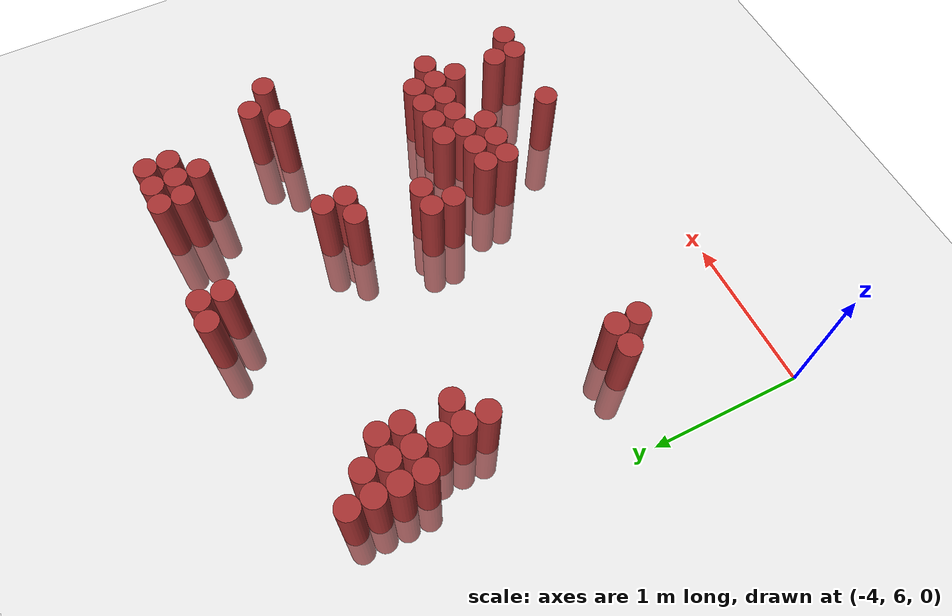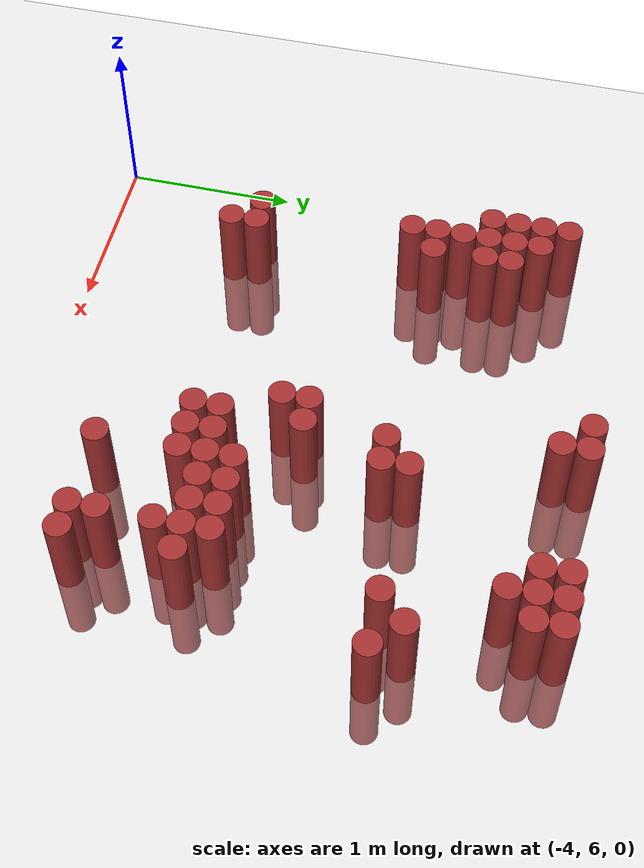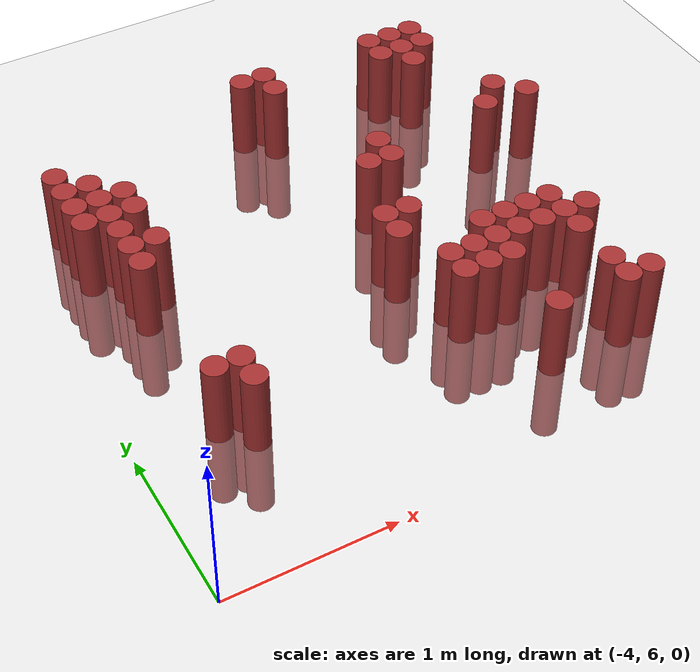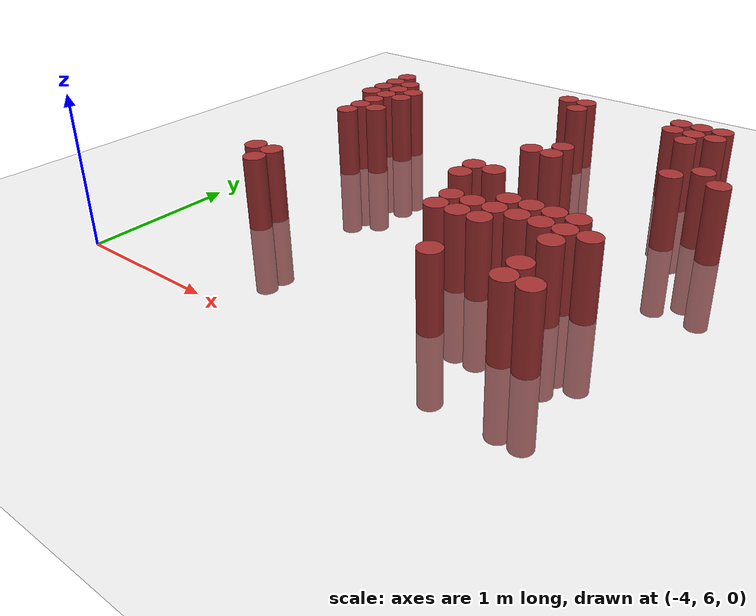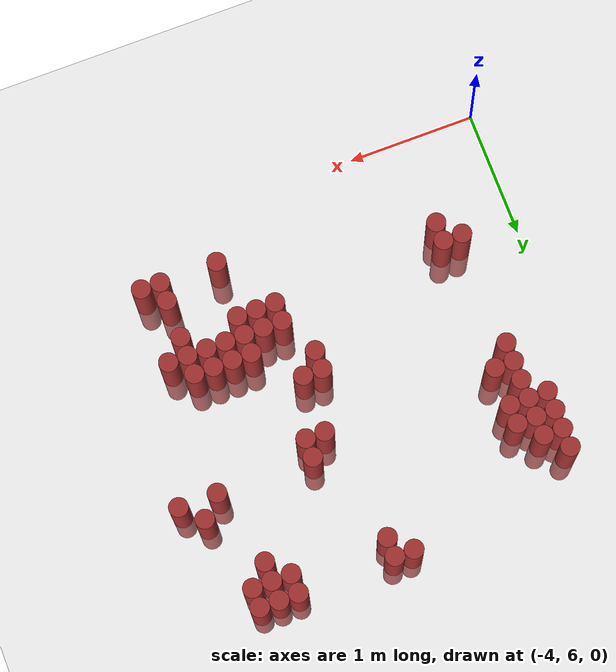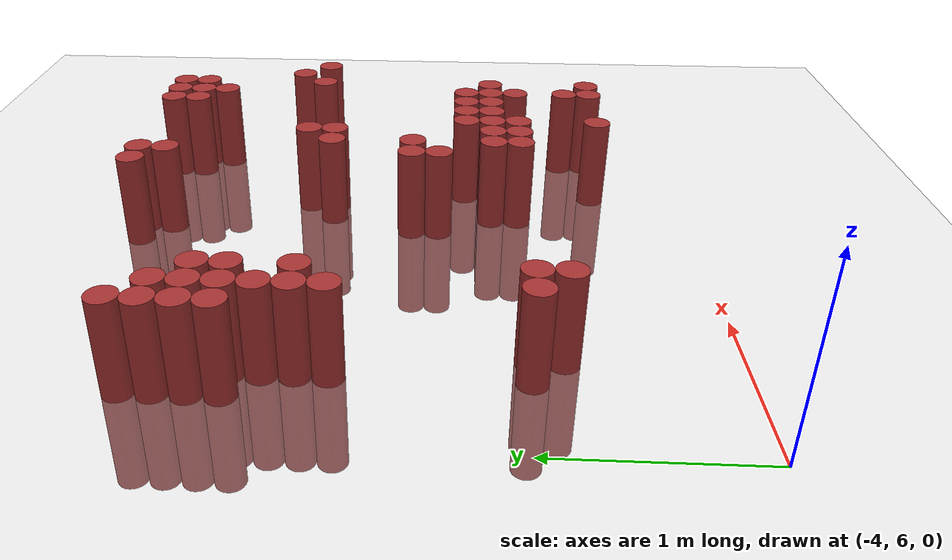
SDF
<sdf version="1.6">
 <world name="default">
  <model name="ground_plane">
   <static>1</static>
   <link name="link">
    <collision name="collision">
     <geometry><plane><normal>0 0 1</normal><size>100 100</size></plane></geometry>
     <surface><friction><ode><mu>100</mu><mu2>50</mu2></ode></friction></surface>
    </collision>
    <visual name="visual">
     <cast_shadows>0</cast_shadows>
     <geometry><plane><normal>0 0 1</normal><size>100 100</size></plane></geometry>
     <material>
      <script><uri>file://media/materials/scripts/gazebo.material</uri><name>Gazebo/Grey</name></script>
     </material>
    </visual>
   </link>
  </model>
  <model name="unit_cylinder_167">
   <static>1</static>
   <pose>-3.675000 8.325000 0.000000 0.000000 0.000000 0.000000</pose>
   <link name="link">
    <inertial>
     <mass>1</mass>
     <inertia><ixx>0.145833</ixx><ixy>0</ixy><ixz>0</ixz><iyy>0.145833</iyy><iyz>0</iyz><izz>0.125</izz></inertia>
    </inertial>
    <collision name="collision">
     <geometry><cylinder><radius>0.075000</radius><length>1</length></cylinder></geometry>
    </collision>
    <visual name="visual">
     <geometry><cylinder><radius>0.075000</radius><length>1</length></cylinder></geometry>
     <material>
      <ambient>0.648000 0.192000 0.192000 1</ambient>
      <diffuse>0.648000 0.192000 0.192000 1</diffuse>
     </material>
     <material>
      <script><name>Gazebo/Grey</name><uri>file://media/materials/scripts/gazebo.material</uri></script>
     </material>
    </visual>
   </link>
  </model>
  <model name="unit_cylinder_168">
   <static>1</static>
   <pose>-3.675000 8.475000 0.000000 0.000000 0.000000 0.000000</pose>
   <link name="link">
    <inertial>
     <mass>1</mass>
     <inertia><ixx>0.145833</ixx><ixy>0</ixy><ixz>0</ixz><iyy>0.145833</iyy><iyz>0</iyz><izz>0.125</izz></inertia>
    </inertial>
    <collision name="collision">
     <geometry><cylinder><radius>0.075000</radius><length>1</length></cylinder></geometry>
    </collision>
    <visual name="visual">
     <geometry><cylinder><radius>0.075000</radius><length>1</length></cylinder></geometry>
     <material>
      <ambient>0.648000 0.192000 0.192000 1</ambient>
      <diffuse>0.648000 0.192000 0.192000 1</diffuse>
     </material>
     <material>
      <script><name>Gazebo/Grey</name><uri>file://media/materials/scripts/gazebo.material</uri></script>
     </material>
    </visual>
   </link>
  </model>
  <model name="unit_cylinder_169">
   <static>1</static>
   <pose>-3.675000 8.625000 0.000000 0.000000 0.000000 0.000000</pose>
   <link name="link">
    <inertial>
     <mass>1</mass>
     <inertia><ixx>0.145833</ixx><ixy>0</ixy><ixz>0</ixz><iyy>0.145833</iyy><iyz>0</iyz><izz>0.125</izz></inertia>
    </inertial>
    <collision name="collision">
     <geometry><cylinder><radius>0.075000</radius><length>1</length></cylinder></geometry>
    </collision>
    <visual name="visual">
     <geometry><cylinder><radius>0.075000</radius><length>1</length></cylinder></geometry>
     <material>
      <ambient>0.648000 0.192000 0.192000 1</ambient>
      <diffuse>0.648000 0.192000 0.192000 1</diffuse>
     </material>
     <material>
      <script><name>Gazebo/Grey</name><uri>file://media/materials/scripts/gazebo.material</uri></script>
     </material>
    </visual>
   </link>
  </model>
  <model name="unit_cylinder_170">
   <static>1</static>
   <pose>-3.675000 8.775000 0.000000 0.000000 0.000000 0.000000</pose>
   <link name="link">
    <inertial>
     <mass>1</mass>
     <inertia><ixx>0.145833</ixx><ixy>0</ixy><ixz>0</ixz><iyy>0.145833</iyy><iyz>0</iyz><izz>0.125</izz></inertia>
    </inertial>
    <collision name="collision">
     <geometry><cylinder><radius>0.075000</radius><length>1</length></cylinder></geometry>
    </collision>
    <visual name="visual">
     <geometry><cylinder><radius>0.075000</radius><length>1</length></cylinder></geometry>
     <material>
      <ambient>0.648000 0.192000 0.192000 1</ambient>
      <diffuse>0.648000 0.192000 0.192000 1</diffuse>
     </material>
     <material>
      <script><name>Gazebo/Grey</name><uri>file://media/materials/scripts/gazebo.material</uri></script>
     </material>
    </visual>
   </link>
  </model>
  <model name="unit_cylinder_173">
   <static>1</static>
   <pose>-3.525000 6.975000 0.000000 0.000000 0.000000 0.000000</pose>
   <link name="link">
    <inertial>
     <mass>1</mass>
     <inertia><ixx>0.145833</ixx><ixy>0</ixy><ixz>0</ixz><iyy>0.145833</iyy><iyz>0</iyz><izz>0.125</izz></inertia>
    </inertial>
    <collision name="collision">
     <geometry><cylinder><radius>0.075000</radius><length>1</length></cylinder></geometry>
    </collision>
    <visual name="visual">
     <geometry><cylinder><radius>0.075000</radius><length>1</length></cylinder></geometry>
     <material>
      <ambient>0.648000 0.192000 0.192000 1</ambient>
      <diffuse>0.648000 0.192000 0.192000 1</diffuse>
     </material>
     <material>
      <script><name>Gazebo/Grey</name><uri>file://media/materials/scripts/gazebo.material</uri></script>
     </material>
    </visual>
   </link>
  </model>
  <model name="unit_cylinder_174">
   <static>1</static>
   <pose>-3.525000 7.875000 0.000000 0.000000 0.000000 0.000000</pose>
   <link name="link">
    <inertial>
     <mass>1</mass>
     <inertia><ixx>0.145833</ixx><ixy>0</ixy><ixz>0</ixz><iyy>0.145833</iyy><iyz>0</iyz><izz>0.125</izz></inertia>
    </inertial>
    <collision name="collision">
     <geometry><cylinder><radius>0.075000</radius><length>1</length></cylinder></geometry>
    </collision>
    <visual name="visual">
     <geometry><cylinder><radius>0.075000</radius><length>1</length></cylinder></geometry>
     <material>
      <ambient>0.648000 0.192000 0.192000 1</ambient>
      <diffuse>0.648000 0.192000 0.192000 1</diffuse>
     </material>
     <material>
      <script><name>Gazebo/Grey</name><uri>file://media/materials/scripts/gazebo.material</uri></script>
     </material>
    </visual>
   </link>
  </model>
  <model name="unit_cylinder_175">
   <static>1</static>
   <pose>-3.525000 8.025000 0.000000 0.000000 0.000000 0.000000</pose>
   <link name="link">
    <inertial>
     <mass>1</mass>
     <inertia><ixx>0.145833</ixx><ixy>0</ixy><ixz>0</ixz><iyy>0.145833</iyy><iyz>0</iyz><izz>0.125</izz></inertia>
    </inertial>
    <collision name="collision">
     <geometry><cylinder><radius>0.075000</radius><length>1</length></cylinder></geometry>
    </collision>
    <visual name="visual">
     <geometry><cylinder><radius>0.075000</radius><length>1</length></cylinder></geometry>
     <material>
      <ambient>0.648000 0.192000 0.192000 1</ambient>
      <diffuse>0.648000 0.192000 0.192000 1</diffuse>
     </material>
     <material>
      <script><name>Gazebo/Grey</name><uri>file://media/materials/scripts/gazebo.material</uri></script>
     </material>
    </visual>
   </link>
  </model>
  <model name="unit_cylinder_176">
   <static>1</static>
   <pose>-3.525000 8.175000 0.000000 0.000000 0.000000 0.000000</pose>
   <link name="link">
    <inertial>
     <mass>1</mass>
     <inertia><ixx>0.145833</ixx><ixy>0</ixy><ixz>0</ixz><iyy>0.145833</iyy><iyz>0</iyz><izz>0.125</izz></inertia>
    </inertial>
    <collision name="collision">
     <geometry><cylinder><radius>0.075000</radius><length>1</length></cylinder></geometry>
    </collision>
    <visual name="visual">
     <geometry><cylinder><radius>0.075000</radius><length>1</length></cylinder></geometry>
     <material>
      <ambient>0.648000 0.192000 0.192000 1</ambient>
      <diffuse>0.648000 0.192000 0.192000 1</diffuse>
     </material>
     <material>
      <script><name>Gazebo/Grey</name><uri>file://media/materials/scripts/gazebo.material</uri></script>
     </material>
    </visual>
   </link>
  </model>
  <model name="unit_cylinder_177">
   <static>1</static>
   <pose>-3.525000 8.325000 0.000000 0.000000 0.000000 0.000000</pose>
   <link name="link">
    <inertial>
     <mass>1</mass>
     <inertia><ixx>0.145833</ixx><ixy>0</ixy><ixz>0</ixz><iyy>0.145833</iyy><iyz>0</iyz><izz>0.125</izz></inertia>
    </inertial>
    <collision name="collision">
     <geometry><cylinder><radius>0.075000</radius><length>1</length></cylinder></geometry>
    </collision>
    <visual name="visual">
     <geometry><cylinder><radius>0.075000</radius><length>1</length></cylinder></geometry>
     <material>
      <ambient>0.648000 0.192000 0.192000 1</ambient>
      <diffuse>0.648000 0.192000 0.192000 1</diffuse>
     </material>
     <material>
      <script><name>Gazebo/Grey</name><uri>file://media/materials/scripts/gazebo.material</uri></script>
     </material>
    </visual>
   </link>
  </model>
  <model name="unit_cylinder_178">
   <static>1</static>
   <pose>-3.525000 8.475000 0.000000 0.000000 0.000000 0.000000</pose>
   <link name="link">
    <inertial>
     <mass>1</mass>
     <inertia><ixx>0.145833</ixx><ixy>0</ixy><ixz>0</ixz><iyy>0.145833</iyy><iyz>0</iyz><izz>0.125</izz></inertia>
    </inertial>
    <collision name="collision">
     <geometry><cylinder><radius>0.075000</radius><length>1</length></cylinder></geometry>
    </collision>
    <visual name="visual">
     <geometry><cylinder><radius>0.075000</radius><length>1</length></cylinder></geometry>
     <material>
      <ambient>0.648000 0.192000 0.192000 1</ambient>
      <diffuse>0.648000 0.192000 0.192000 1</diffuse>
     </material>
     <material>
      <script><name>Gazebo/Grey</name><uri>file://media/materials/scripts/gazebo.material</uri></script>
     </material>
    </visual>
   </link>
  </model>
  <model name="unit_cylinder_179">
   <static>1</static>
   <pose>-3.525000 8.625000 0.000000 0.000000 0.000000 0.000000</pose>
   <link name="link">
    <inertial>
     <mass>1</mass>
     <inertia><ixx>0.145833</ixx><ixy>0</ixy><ixz>0</ixz><iyy>0.145833</iyy><iyz>0</iyz><izz>0.125</izz></inertia>
    </inertial>
    <collision name="collision">
     <geometry><cylinder><radius>0.075000</radius><length>1</length></cylinder></geometry>
    </collision>
    <visual name="visual">
     <geometry><cylinder><radius>0.075000</radius><length>1</length></cylinder></geometry>
     <material>
      <ambient>0.648000 0.192000 0.192000 1</ambient>
      <diffuse>0.648000 0.192000 0.192000 1</diffuse>
     </material>
     <material>
      <script><name>Gazebo/Grey</name><uri>file://media/materials/scripts/gazebo.material</uri></script>
     </material>
    </visual>
   </link>
  </model>
  <model name="unit_cylinder_183">
   <static>1</static>
   <pose>-3.375000 6.825000 0.000000 0.000000 0.000000 0.000000</pose>
   <link name="link">
    <inertial>
     <mass>1</mass>
     <inertia><ixx>0.145833</ixx><ixy>0</ixy><ixz>0</ixz><iyy>0.145833</iyy><iyz>0</iyz><izz>0.125</izz></inertia>
    </inertial>
    <collision name="collision">
     <geometry><cylinder><radius>0.075000</radius><length>1</length></cylinder></geometry>
    </collision>
    <visual name="visual">
     <geometry><cylinder><radius>0.075000</radius><length>1</length></cylinder></geometry>
     <material>
      <ambient>0.648000 0.192000 0.192000 1</ambient>
      <diffuse>0.648000 0.192000 0.192000 1</diffuse>
     </material>
     <material>
      <script><name>Gazebo/Grey</name><uri>file://media/materials/scripts/gazebo.material</uri></script>
     </material>
    </visual>
   </link>
  </model>
  <model name="unit_cylinder_184">
   <static>1</static>
   <pose>-3.375000 6.975000 0.000000 0.000000 0.000000 0.000000</pose>
   <link name="link">
    <inertial>
     <mass>1</mass>
     <inertia><ixx>0.145833</ixx><ixy>0</ixy><ixz>0</ixz><iyy>0.145833</iyy><iyz>0</iyz><izz>0.125</izz></inertia>
    </inertial>
    <collision name="collision">
     <geometry><cylinder><radius>0.075000</radius><length>1</length></cylinder></geometry>
    </collision>
    <visual name="visual">
     <geometry><cylinder><radius>0.075000</radius><length>1</length></cylinder></geometry>
     <material>
      <ambient>0.648000 0.192000 0.192000 1</ambient>
      <diffuse>0.648000 0.192000 0.192000 1</diffuse>
     </material>
     <material>
      <script><name>Gazebo/Grey</name><uri>file://media/materials/scripts/gazebo.material</uri></script>
     </material>
    </visual>
   </link>
  </model>
  <model name="unit_cylinder_185">
   <static>1</static>
   <pose>-3.375000 8.025000 0.000000 0.000000 0.000000 0.000000</pose>
   <link name="link">
    <inertial>
     <mass>1</mass>
     <inertia><ixx>0.145833</ixx><ixy>0</ixy><ixz>0</ixz><iyy>0.145833</iyy><iyz>0</iyz><izz>0.125</izz></inertia>
    </inertial>
    <collision name="collision">
     <geometry><cylinder><radius>0.075000</radius><length>1</length></cylinder></geometry>
    </collision>
    <visual name="visual">
     <geometry><cylinder><radius>0.075000</radius><length>1</length></cylinder></geometry>
     <material>
      <ambient>0.648000 0.192000 0.192000 1</ambient>
      <diffuse>0.648000 0.192000 0.192000 1</diffuse>
     </material>
     <material>
      <script><name>Gazebo/Grey</name><uri>file://media/materials/scripts/gazebo.material</uri></script>
     </material>
    </visual>
   </link>
  </model>
  <model name="unit_cylinder_186">
   <static>1</static>
   <pose>-3.375000 8.325000 0.000000 0.000000 0.000000 0.000000</pose>
   <link name="link">
    <inertial>
     <mass>1</mass>
     <inertia><ixx>0.145833</ixx><ixy>0</ixy><ixz>0</ixz><iyy>0.145833</iyy><iyz>0</iyz><izz>0.125</izz></inertia>
    </inertial>
    <collision name="collision">
     <geometry><cylinder><radius>0.075000</radius><length>1</length></cylinder></geometry>
    </collision>
    <visual name="visual">
     <geometry><cylinder><radius>0.075000</radius><length>1</length></cylinder></geometry>
     <material>
      <ambient>0.648000 0.192000 0.192000 1</ambient>
      <diffuse>0.648000 0.192000 0.192000 1</diffuse>
     </material>
     <material>
      <script><name>Gazebo/Grey</name><uri>file://media/materials/scripts/gazebo.material</uri></script>
     </material>
    </visual>
   </link>
  </model>
  <model name="unit_cylinder_187">
   <static>1</static>
   <pose>-3.375000 8.475000 0.000000 0.000000 0.000000 0.000000</pose>
   <link name="link">
    <inertial>
     <mass>1</mass>
     <inertia><ixx>0.145833</ixx><ixy>0</ixy><ixz>0</ixz><iyy>0.145833</iyy><iyz>0</iyz><izz>0.125</izz></inertia>
    </inertial>
    <collision name="collision">
     <geometry><cylinder><radius>0.075000</radius><length>1</length></cylinder></geometry>
    </collision>
    <visual name="visual">
     <geometry><cylinder><radius>0.075000</radius><length>1</length></cylinder></geometry>
     <material>
      <ambient>0.648000 0.192000 0.192000 1</ambient>
      <diffuse>0.648000 0.192000 0.192000 1</diffuse>
     </material>
     <material>
      <script><name>Gazebo/Grey</name><uri>file://media/materials/scripts/gazebo.material</uri></script>
     </material>
    </visual>
   </link>
  </model>
  <model name="unit_cylinder_194">
   <static>1</static>
   <pose>-2.325000 9.075000 0.000000 0.000000 0.000000 0.000000</pose>
   <link name="link">
    <inertial>
     <mass>1</mass>
     <inertia><ixx>0.145833</ixx><ixy>0</ixy><ixz>0</ixz><iyy>0.145833</iyy><iyz>0</iyz><izz>0.125</izz></inertia>
    </inertial>
    <collision name="collision">
     <geometry><cylinder><radius>0.075000</radius><length>1</length></cylinder></geometry>
    </collision>
    <visual name="visual">
     <geometry><cylinder><radius>0.075000</radius><length>1</length></cylinder></geometry>
     <material>
      <ambient>0.648000 0.192000 0.192000 1</ambient>
      <diffuse>0.648000 0.192000 0.192000 1</diffuse>
     </material>
     <material>
      <script><name>Gazebo/Grey</name><uri>file://media/materials/scripts/gazebo.material</uri></script>
     </material>
    </visual>
   </link>
  </model>
  <model name="unit_cylinder_197">
   <static>1</static>
   <pose>-2.175000 7.425000 0.000000 0.000000 0.000000 0.000000</pose>
   <link name="link">
    <inertial>
     <mass>1</mass>
     <inertia><ixx>0.145833</ixx><ixy>0</ixy><ixz>0</ixz><iyy>0.145833</iyy><iyz>0</iyz><izz>0.125</izz></inertia>
    </inertial>
    <collision name="collision">
     <geometry><cylinder><radius>0.075000</radius><length>1</length></cylinder></geometry>
    </collision>
    <visual name="visual">
     <geometry><cylinder><radius>0.075000</radius><length>1</length></cylinder></geometry>
     <material>
      <ambient>0.648000 0.192000 0.192000 1</ambient>
      <diffuse>0.648000 0.192000 0.192000 1</diffuse>
     </material>
     <material>
      <script><name>Gazebo/Grey</name><uri>file://media/materials/scripts/gazebo.material</uri></script>
     </material>
    </visual>
   </link>
  </model>
  <model name="unit_cylinder_198">
   <static>1</static>
   <pose>-2.175000 7.575000 0.000000 0.000000 0.000000 0.000000</pose>
   <link name="link">
    <inertial>
     <mass>1</mass>
     <inertia><ixx>0.145833</ixx><ixy>0</ixy><ixz>0</ixz><iyy>0.145833</iyy><iyz>0</iyz><izz>0.125</izz></inertia>
    </inertial>
    <collision name="collision">
     <geometry><cylinder><radius>0.075000</radius><length>1</length></cylinder></geometry>
    </collision>
    <visual name="visual">
     <geometry><cylinder><radius>0.075000</radius><length>1</length></cylinder></geometry>
     <material>
      <ambient>0.648000 0.192000 0.192000 1</ambient>
      <diffuse>0.648000 0.192000 0.192000 1</diffuse>
     </material>
     <material>
      <script><name>Gazebo/Grey</name><uri>file://media/materials/scripts/gazebo.material</uri></script>
     </material>
    </visual>
   </link>
  </model>
  <model name="unit_cylinder_199">
   <static>1</static>
   <pose>-2.175000 8.925000 0.000000 0.000000 0.000000 0.000000</pose>
   <link name="link">
    <inertial>
     <mass>1</mass>
     <inertia><ixx>0.145833</ixx><ixy>0</ixy><ixz>0</ixz><iyy>0.145833</iyy><iyz>0</iyz><izz>0.125</izz></inertia>
    </inertial>
    <collision name="collision">
     <geometry><cylinder><radius>0.075000</radius><length>1</length></cylinder></geometry>
    </collision>
    <visual name="visual">
     <geometry><cylinder><radius>0.075000</radius><length>1</length></cylinder></geometry>
     <material>
      <ambient>0.648000 0.192000 0.192000 1</ambient>
      <diffuse>0.648000 0.192000 0.192000 1</diffuse>
     </material>
     <material>
      <script><name>Gazebo/Grey</name><uri>file://media/materials/scripts/gazebo.material</uri></script>
     </material>
    </visual>
   </link>
  </model>
  <model name="unit_cylinder_200">
   <static>1</static>
   <pose>-2.175000 9.075000 0.000000 0.000000 0.000000 0.000000</pose>
   <link name="link">
    <inertial>
     <mass>1</mass>
     <inertia><ixx>0.145833</ixx><ixy>0</ixy><ixz>0</ixz><iyy>0.145833</iyy><iyz>0</iyz><izz>0.125</izz></inertia>
    </inertial>
    <collision name="collision">
     <geometry><cylinder><radius>0.075000</radius><length>1</length></cylinder></geometry>
    </collision>
    <visual name="visual">
     <geometry><cylinder><radius>0.075000</radius><length>1</length></cylinder></geometry>
     <material>
      <ambient>0.648000 0.192000 0.192000 1</ambient>
      <diffuse>0.648000 0.192000 0.192000 1</diffuse>
     </material>
     <material>
      <script><name>Gazebo/Grey</name><uri>file://media/materials/scripts/gazebo.material</uri></script>
     </material>
    </visual>
   </link>
  </model>
  <model name="unit_cylinder_204">
   <static>1</static>
   <pose>-2.025000 6.975000 0.000000 0.000000 0.000000 0.000000</pose>
   <link name="link">
    <inertial>
     <mass>1</mass>
     <inertia><ixx>0.145833</ixx><ixy>0</ixy><ixz>0</ixz><iyy>0.145833</iyy><iyz>0</iyz><izz>0.125</izz></inertia>
    </inertial>
    <collision name="collision">
     <geometry><cylinder><radius>0.075000</radius><length>1</length></cylinder></geometry>
    </collision>
    <visual name="visual">
     <geometry><cylinder><radius>0.075000</radius><length>1</length></cylinder></geometry>
     <material>
      <ambient>0.648000 0.192000 0.192000 1</ambient>
      <diffuse>0.648000 0.192000 0.192000 1</diffuse>
     </material>
     <material>
      <script><name>Gazebo/Grey</name><uri>file://media/materials/scripts/gazebo.material</uri></script>
     </material>
    </visual>
   </link>
  </model>
  <model name="unit_cylinder_205">
   <static>1</static>
   <pose>-2.025000 7.125000 0.000000 0.000000 0.000000 0.000000</pose>
   <link name="link">
    <inertial>
     <mass>1</mass>
     <inertia><ixx>0.145833</ixx><ixy>0</ixy><ixz>0</ixz><iyy>0.145833</iyy><iyz>0</iyz><izz>0.125</izz></inertia>
    </inertial>
    <collision name="collision">
     <geometry><cylinder><radius>0.075000</radius><length>1</length></cylinder></geometry>
    </collision>
    <visual name="visual">
     <geometry><cylinder><radius>0.075000</radius><length>1</length></cylinder></geometry>
     <material>
      <ambient>0.648000 0.192000 0.192000 1</ambient>
      <diffuse>0.648000 0.192000 0.192000 1</diffuse>
     </material>
     <material>
      <script><name>Gazebo/Grey</name><uri>file://media/materials/scripts/gazebo.material</uri></script>
     </material>
    </visual>
   </link>
  </model>
  <model name="unit_cylinder_206">
   <static>1</static>
   <pose>-2.025000 7.575000 0.000000 0.000000 0.000000 0.000000</pose>
   <link name="link">
    <inertial>
     <mass>1</mass>
     <inertia><ixx>0.145833</ixx><ixy>0</ixy><ixz>0</ixz><iyy>0.145833</iyy><iyz>0</iyz><izz>0.125</izz></inertia>
    </inertial>
    <collision name="collision">
     <geometry><cylinder><radius>0.075000</radius><length>1</length></cylinder></geometry>
    </collision>
    <visual name="visual">
     <geometry><cylinder><radius>0.075000</radius><length>1</length></cylinder></geometry>
     <material>
      <ambient>0.648000 0.192000 0.192000 1</ambient>
      <diffuse>0.648000 0.192000 0.192000 1</diffuse>
     </material>
     <material>
      <script><name>Gazebo/Grey</name><uri>file://media/materials/scripts/gazebo.material</uri></script>
     </material>
    </visual>
   </link>
  </model>
  <model name="unit_cylinder_207">
   <static>1</static>
   <pose>-2.025000 8.025000 0.000000 0.000000 0.000000 0.000000</pose>
   <link name="link">
    <inertial>
     <mass>1</mass>
     <inertia><ixx>0.145833</ixx><ixy>0</ixy><ixz>0</ixz><iyy>0.145833</iyy><iyz>0</iyz><izz>0.125</izz></inertia>
    </inertial>
    <collision name="collision">
     <geometry><cylinder><radius>0.075000</radius><length>1</length></cylinder></geometry>
    </collision>
    <visual name="visual">
     <geometry><cylinder><radius>0.075000</radius><length>1</length></cylinder></geometry>
     <material>
      <ambient>0.648000 0.192000 0.192000 1</ambient>
      <diffuse>0.648000 0.192000 0.192000 1</diffuse>
     </material>
     <material>
      <script><name>Gazebo/Grey</name><uri>file://media/materials/scripts/gazebo.material</uri></script>
     </material>
    </visual>
   </link>
  </model>
  <model name="unit_cylinder_211">
   <static>1</static>
   <pose>-1.875000 6.975000 0.000000 0.000000 0.000000 0.000000</pose>
   <link name="link">
    <inertial>
     <mass>1</mass>
     <inertia><ixx>0.145833</ixx><ixy>0</ixy><ixz>0</ixz><iyy>0.145833</iyy><iyz>0</iyz><izz>0.125</izz></inertia>
    </inertial>
    <collision name="collision">
     <geometry><cylinder><radius>0.075000</radius><length>1</length></cylinder></geometry>
    </collision>
    <visual name="visual">
     <geometry><cylinder><radius>0.075000</radius><length>1</length></cylinder></geometry>
     <material>
      <ambient>0.648000 0.192000 0.192000 1</ambient>
      <diffuse>0.648000 0.192000 0.192000 1</diffuse>
     </material>
     <material>
      <script><name>Gazebo/Grey</name><uri>file://media/materials/scripts/gazebo.material</uri></script>
     </material>
    </visual>
   </link>
  </model>
  <model name="unit_cylinder_212">
   <static>1</static>
   <pose>-1.875000 7.125000 0.000000 0.000000 0.000000 0.000000</pose>
   <link name="link">
    <inertial>
     <mass>1</mass>
     <inertia><ixx>0.145833</ixx><ixy>0</ixy><ixz>0</ixz><iyy>0.145833</iyy><iyz>0</iyz><izz>0.125</izz></inertia>
    </inertial>
    <collision name="collision">
     <geometry><cylinder><radius>0.075000</radius><length>1</length></cylinder></geometry>
    </collision>
    <visual name="visual">
     <geometry><cylinder><radius>0.075000</radius><length>1</length></cylinder></geometry>
     <material>
      <ambient>0.648000 0.192000 0.192000 1</ambient>
      <diffuse>0.648000 0.192000 0.192000 1</diffuse>
     </material>
     <material>
      <script><name>Gazebo/Grey</name><uri>file://media/materials/scripts/gazebo.material</uri></script>
     </material>
    </visual>
   </link>
  </model>
  <model name="unit_cylinder_213">
   <static>1</static>
   <pose>-1.875000 8.025000 0.000000 0.000000 0.000000 0.000000</pose>
   <link name="link">
    <inertial>
     <mass>1</mass>
     <inertia><ixx>0.145833</ixx><ixy>0</ixy><ixz>0</ixz><iyy>0.145833</iyy><iyz>0</iyz><izz>0.125</izz></inertia>
    </inertial>
    <collision name="collision">
     <geometry><cylinder><radius>0.075000</radius><length>1</length></cylinder></geometry>
    </collision>
    <visual name="visual">
     <geometry><cylinder><radius>0.075000</radius><length>1</length></cylinder></geometry>
     <material>
      <ambient>0.648000 0.192000 0.192000 1</ambient>
      <diffuse>0.648000 0.192000 0.192000 1</diffuse>
     </material>
     <material>
      <script><name>Gazebo/Grey</name><uri>file://media/materials/scripts/gazebo.material</uri></script>
     </material>
    </visual>
   </link>
  </model>
  <model name="unit_cylinder_214">
   <static>1</static>
   <pose>-1.875000 8.175000 0.000000 0.000000 0.000000 0.000000</pose>
   <link name="link">
    <inertial>
     <mass>1</mass>
     <inertia><ixx>0.145833</ixx><ixy>0</ixy><ixz>0</ixz><iyy>0.145833</iyy><iyz>0</iyz><izz>0.125</izz></inertia>
    </inertial>
    <collision name="collision">
     <geometry><cylinder><radius>0.075000</radius><length>1</length></cylinder></geometry>
    </collision>
    <visual name="visual">
     <geometry><cylinder><radius>0.075000</radius><length>1</length></cylinder></geometry>
     <material>
      <ambient>0.648000 0.192000 0.192000 1</ambient>
      <diffuse>0.648000 0.192000 0.192000 1</diffuse>
     </material>
     <material>
      <script><name>Gazebo/Grey</name><uri>file://media/materials/scripts/gazebo.material</uri></script>
     </material>
    </visual>
   </link>
  </model>
  <model name="unit_cylinder_216">
   <static>1</static>
   <pose>-1.725000 6.525000 0.000000 0.000000 0.000000 0.000000</pose>
   <link name="link">
    <inertial>
     <mass>1</mass>
     <inertia><ixx>0.145833</ixx><ixy>0</ixy><ixz>0</ixz><iyy>0.145833</iyy><iyz>0</iyz><izz>0.125</izz></inertia>
    </inertial>
    <collision name="collision">
     <geometry><cylinder><radius>0.075000</radius><length>1</length></cylinder></geometry>
    </collision>
    <visual name="visual">
     <geometry><cylinder><radius>0.075000</radius><length>1</length></cylinder></geometry>
     <material>
      <ambient>0.648000 0.192000 0.192000 1</ambient>
      <diffuse>0.648000 0.192000 0.192000 1</diffuse>
     </material>
     <material>
      <script><name>Gazebo/Grey</name><uri>file://media/materials/scripts/gazebo.material</uri></script>
     </material>
    </visual>
   </link>
  </model>
  <model name="unit_cylinder_217">
   <static>1</static>
   <pose>-1.725000 6.975000 0.000000 0.000000 0.000000 0.000000</pose>
   <link name="link">
    <inertial>
     <mass>1</mass>
     <inertia><ixx>0.145833</ixx><ixy>0</ixy><ixz>0</ixz><iyy>0.145833</iyy><iyz>0</iyz><izz>0.125</izz></inertia>
    </inertial>
    <collision name="collision">
     <geometry><cylinder><radius>0.075000</radius><length>1</length></cylinder></geometry>
    </collision>
    <visual name="visual">
     <geometry><cylinder><radius>0.075000</radius><length>1</length></cylinder></geometry>
     <material>
      <ambient>0.648000 0.192000 0.192000 1</ambient>
      <diffuse>0.648000 0.192000 0.192000 1</diffuse>
     </material>
     <material>
      <script><name>Gazebo/Grey</name><uri>file://media/materials/scripts/gazebo.material</uri></script>
     </material>
    </visual>
   </link>
  </model>
  <model name="unit_cylinder_218">
   <static>1</static>
   <pose>-1.725000 7.125000 0.000000 0.000000 0.000000 0.000000</pose>
   <link name="link">
    <inertial>
     <mass>1</mass>
     <inertia><ixx>0.145833</ixx><ixy>0</ixy><ixz>0</ixz><iyy>0.145833</iyy><iyz>0</iyz><izz>0.125</izz></inertia>
    </inertial>
    <collision name="collision">
     <geometry><cylinder><radius>0.075000</radius><length>1</length></cylinder></geometry>
    </collision>
    <visual name="visual">
     <geometry><cylinder><radius>0.075000</radius><length>1</length></cylinder></geometry>
     <material>
      <ambient>0.648000 0.192000 0.192000 1</ambient>
      <diffuse>0.648000 0.192000 0.192000 1</diffuse>
     </material>
     <material>
      <script><name>Gazebo/Grey</name><uri>file://media/materials/scripts/gazebo.material</uri></script>
     </material>
    </visual>
   </link>
  </model>
  <model name="unit_cylinder_219">
   <static>1</static>
   <pose>-1.725000 7.275000 0.000000 0.000000 0.000000 0.000000</pose>
   <link name="link">
    <inertial>
     <mass>1</mass>
     <inertia><ixx>0.145833</ixx><ixy>0</ixy><ixz>0</ixz><iyy>0.145833</iyy><iyz>0</iyz><izz>0.125</izz></inertia>
    </inertial>
    <collision name="collision">
     <geometry><cylinder><radius>0.075000</radius><length>1</length></cylinder></geometry>
    </collision>
    <visual name="visual">
     <geometry><cylinder><radius>0.075000</radius><length>1</length></cylinder></geometry>
     <material>
      <ambient>0.648000 0.192000 0.192000 1</ambient>
      <diffuse>0.648000 0.192000 0.192000 1</diffuse>
     </material>
     <material>
      <script><name>Gazebo/Grey</name><uri>file://media/materials/scripts/gazebo.material</uri></script>
     </material>
    </visual>
   </link>
  </model>
  <model name="unit_cylinder_220">
   <static>1</static>
   <pose>-1.575000 7.125000 0.000000 0.000000 0.000000 0.000000</pose>
   <link name="link">
    <inertial>
     <mass>1</mass>
     <inertia><ixx>0.145833</ixx><ixy>0</ixy><ixz>0</ixz><iyy>0.145833</iyy><iyz>0</iyz><izz>0.125</izz></inertia>
    </inertial>
    <collision name="collision">
     <geometry><cylinder><radius>0.075000</radius><length>1</length></cylinder></geometry>
    </collision>
    <visual name="visual">
     <geometry><cylinder><radius>0.075000</radius><length>1</length></cylinder></geometry>
     <material>
      <ambient>0.648000 0.192000 0.192000 1</ambient>
      <diffuse>0.648000 0.192000 0.192000 1</diffuse>
     </material>
     <material>
      <script><name>Gazebo/Grey</name><uri>file://media/materials/scripts/gazebo.material</uri></script>
     </material>
    </visual>
   </link>
  </model>
  <model name="unit_cylinder_221">
   <static>1</static>
   <pose>-1.575000 7.275000 0.000000 0.000000 0.000000 0.000000</pose>
   <link name="link">
    <inertial>
     <mass>1</mass>
     <inertia><ixx>0.145833</ixx><ixy>0</ixy><ixz>0</ixz><iyy>0.145833</iyy><iyz>0</iyz><izz>0.125</izz></inertia>
    </inertial>
    <collision name="collision">
     <geometry><cylinder><radius>0.075000</radius><length>1</length></cylinder></geometry>
    </collision>
    <visual name="visual">
     <geometry><cylinder><radius>0.075000</radius><length>1</length></cylinder></geometry>
     <material>
      <ambient>0.648000 0.192000 0.192000 1</ambient>
      <diffuse>0.648000 0.192000 0.192000 1</diffuse>
     </material>
     <material>
      <script><name>Gazebo/Grey</name><uri>file://media/materials/scripts/gazebo.material</uri></script>
     </material>
    </visual>
   </link>
  </model>
  <model name="unit_cylinder_222">
   <static>1</static>
   <pose>-1.425000 7.125000 0.000000 0.000000 0.000000 0.000000</pose>
   <link name="link">
    <inertial>
     <mass>1</mass>
     <inertia><ixx>0.145833</ixx><ixy>0</ixy><ixz>0</ixz><iyy>0.145833</iyy><iyz>0</iyz><izz>0.125</izz></inertia>
    </inertial>
    <collision name="collision">
     <geometry><cylinder><radius>0.075000</radius><length>1</length></cylinder></geometry>
    </collision>
    <visual name="visual">
     <geometry><cylinder><radius>0.075000</radius><length>1</length></cylinder></geometry>
     <material>
      <ambient>0.648000 0.192000 0.192000 1</ambient>
      <diffuse>0.648000 0.192000 0.192000 1</diffuse>
     </material>
     <material>
      <script><name>Gazebo/Grey</name><uri>file://media/materials/scripts/gazebo.material</uri></script>
     </material>
    </visual>
   </link>
  </model>
  <model name="unit_cylinder_223">
   <static>1</static>
   <pose>-1.425000 7.275000 0.000000 0.000000 0.000000 0.000000</pose>
   <link name="link">
    <inertial>
     <mass>1</mass>
     <inertia><ixx>0.145833</ixx><ixy>0</ixy><ixz>0</ixz><iyy>0.145833</iyy><iyz>0</iyz><izz>0.125</izz></inertia>
    </inertial>
    <collision name="collision">
     <geometry><cylinder><radius>0.075000</radius><length>1</length></cylinder></geometry>
    </collision>
    <visual name="visual">
     <geometry><cylinder><radius>0.075000</radius><length>1</length></cylinder></geometry>
     <material>
      <ambient>0.648000 0.192000 0.192000 1</ambient>
      <diffuse>0.648000 0.192000 0.192000 1</diffuse>
     </material>
     <material>
      <script><name>Gazebo/Grey</name><uri>file://media/materials/scripts/gazebo.material</uri></script>
     </material>
    </visual>
   </link>
  </model>
  <model name="unit_cylinder_224">
   <static>1</static>
   <pose>-1.425000 8.925000 0.000000 0.000000 0.000000 0.000000</pose>
   <link name="link">
    <inertial>
     <mass>1</mass>
     <inertia><ixx>0.145833</ixx><ixy>0</ixy><ixz>0</ixz><iyy>0.145833</iyy><iyz>0</iyz><izz>0.125</izz></inertia>
    </inertial>
    <collision name="collision">
     <geometry><cylinder><radius>0.075000</radius><length>1</length></cylinder></geometry>
    </collision>
    <visual name="visual">
     <geometry><cylinder><radius>0.075000</radius><length>1</length></cylinder></geometry>
     <material>
      <ambient>0.648000 0.192000 0.192000 1</ambient>
      <diffuse>0.648000 0.192000 0.192000 1</diffuse>
     </material>
     <material>
      <script><name>Gazebo/Grey</name><uri>file://media/materials/scripts/gazebo.material</uri></script>
     </material>
    </visual>
   </link>
  </model>
  <model name="unit_cylinder_225">
   <static>1</static>
   <pose>-1.425000 9.075000 0.000000 0.000000 0.000000 0.000000</pose>
   <link name="link">
    <inertial>
     <mass>1</mass>
     <inertia><ixx>0.145833</ixx><ixy>0</ixy><ixz>0</ixz><iyy>0.145833</iyy><iyz>0</iyz><izz>0.125</izz></inertia>
    </inertial>
    <collision name="collision">
     <geometry><cylinder><radius>0.075000</radius><length>1</length></cylinder></geometry>
    </collision>
    <visual name="visual">
     <geometry><cylinder><radius>0.075000</radius><length>1</length></cylinder></geometry>
     <material>
      <ambient>0.648000 0.192000 0.192000 1</ambient>
      <diffuse>0.648000 0.192000 0.192000 1</diffuse>
     </material>
     <material>
      <script><name>Gazebo/Grey</name><uri>file://media/materials/scripts/gazebo.material</uri></script>
     </material>
    </visual>
   </link>
  </model>
  <model name="unit_cylinder_229">
   <static>1</static>
   <pose>-1.275000 6.525000 0.000000 0.000000 0.000000 0.000000</pose>
   <link name="link">
    <inertial>
     <mass>1</mass>
     <inertia><ixx>0.145833</ixx><ixy>0</ixy><ixz>0</ixz><iyy>0.145833</iyy><iyz>0</iyz><izz>0.125</izz></inertia>
    </inertial>
    <collision name="collision">
     <geometry><cylinder><radius>0.075000</radius><length>1</length></cylinder></geometry>
    </collision>
    <visual name="visual">
     <geometry><cylinder><radius>0.075000</radius><length>1</length></cylinder></geometry>
     <material>
      <ambient>0.648000 0.192000 0.192000 1</ambient>
      <diffuse>0.648000 0.192000 0.192000 1</diffuse>
     </material>
     <material>
      <script><name>Gazebo/Grey</name><uri>file://media/materials/scripts/gazebo.material</uri></script>
     </material>
    </visual>
   </link>
  </model>
  <model name="unit_cylinder_230">
   <static>1</static>
   <pose>-1.275000 6.675000 0.000000 0.000000 0.000000 0.000000</pose>
   <link name="link">
    <inertial>
     <mass>1</mass>
     <inertia><ixx>0.145833</ixx><ixy>0</ixy><ixz>0</ixz><iyy>0.145833</iyy><iyz>0</iyz><izz>0.125</izz></inertia>
    </inertial>
    <collision name="collision">
     <geometry><cylinder><radius>0.075000</radius><length>1</length></cylinder></geometry>
    </collision>
    <visual name="visual">
     <geometry><cylinder><radius>0.075000</radius><length>1</length></cylinder></geometry>
     <material>
      <ambient>0.648000 0.192000 0.192000 1</ambient>
      <diffuse>0.648000 0.192000 0.192000 1</diffuse>
     </material>
     <material>
      <script><name>Gazebo/Grey</name><uri>file://media/materials/scripts/gazebo.material</uri></script>
     </material>
    </visual>
   </link>
  </model>
  <model name="unit_cylinder_231">
   <static>1</static>
   <pose>-1.275000 6.975000 0.000000 0.000000 0.000000 0.000000</pose>
   <link name="link">
    <inertial>
     <mass>1</mass>
     <inertia><ixx>0.145833</ixx><ixy>0</ixy><ixz>0</ixz><iyy>0.145833</iyy><iyz>0</iyz><izz>0.125</izz></inertia>
    </inertial>
    <collision name="collision">
     <geometry><cylinder><radius>0.075000</radius><length>1</length></cylinder></geometry>
    </collision>
    <visual name="visual">
     <geometry><cylinder><radius>0.075000</radius><length>1</length></cylinder></geometry>
     <material>
      <ambient>0.648000 0.192000 0.192000 1</ambient>
      <diffuse>0.648000 0.192000 0.192000 1</diffuse>
     </material>
     <material>
      <script><name>Gazebo/Grey</name><uri>file://media/materials/scripts/gazebo.material</uri></script>
     </material>
    </visual>
   </link>
  </model>
  <model name="unit_cylinder_232">
   <static>1</static>
   <pose>-1.275000 7.125000 0.000000 0.000000 0.000000 0.000000</pose>
   <link name="link">
    <inertial>
     <mass>1</mass>
     <inertia><ixx>0.145833</ixx><ixy>0</ixy><ixz>0</ixz><iyy>0.145833</iyy><iyz>0</iyz><izz>0.125</izz></inertia>
    </inertial>
    <collision name="collision">
     <geometry><cylinder><radius>0.075000</radius><length>1</length></cylinder></geometry>
    </collision>
    <visual name="visual">
     <geometry><cylinder><radius>0.075000</radius><length>1</length></cylinder></geometry>
     <material>
      <ambient>0.648000 0.192000 0.192000 1</ambient>
      <diffuse>0.648000 0.192000 0.192000 1</diffuse>
     </material>
     <material>
      <script><name>Gazebo/Grey</name><uri>file://media/materials/scripts/gazebo.material</uri></script>
     </material>
    </visual>
   </link>
  </model>
  <model name="unit_cylinder_233">
   <static>1</static>
   <pose>-1.275000 7.275000 0.000000 0.000000 0.000000 0.000000</pose>
   <link name="link">
    <inertial>
     <mass>1</mass>
     <inertia><ixx>0.145833</ixx><ixy>0</ixy><ixz>0</ixz><iyy>0.145833</iyy><iyz>0</iyz><izz>0.125</izz></inertia>
    </inertial>
    <collision name="collision">
     <geometry><cylinder><radius>0.075000</radius><length>1</length></cylinder></geometry>
    </collision>
    <visual name="visual">
     <geometry><cylinder><radius>0.075000</radius><length>1</length></cylinder></geometry>
     <material>
      <ambient>0.648000 0.192000 0.192000 1</ambient>
      <diffuse>0.648000 0.192000 0.192000 1</diffuse>
     </material>
     <material>
      <script><name>Gazebo/Grey</name><uri>file://media/materials/scripts/gazebo.material</uri></script>
     </material>
    </visual>
   </link>
  </model>
  <model name="unit_cylinder_234">
   <static>1</static>
   <pose>-1.275000 8.775000 0.000000 0.000000 0.000000 0.000000</pose>
   <link name="link">
    <inertial>
     <mass>1</mass>
     <inertia><ixx>0.145833</ixx><ixy>0</ixy><ixz>0</ixz><iyy>0.145833</iyy><iyz>0</iyz><izz>0.125</izz></inertia>
    </inertial>
    <collision name="collision">
     <geometry><cylinder><radius>0.075000</radius><length>1</length></cylinder></geometry>
    </collision>
    <visual name="visual">
     <geometry><cylinder><radius>0.075000</radius><length>1</length></cylinder></geometry>
     <material>
      <ambient>0.648000 0.192000 0.192000 1</ambient>
      <diffuse>0.648000 0.192000 0.192000 1</diffuse>
     </material>
     <material>
      <script><name>Gazebo/Grey</name><uri>file://media/materials/scripts/gazebo.material</uri></script>
     </material>
    </visual>
   </link>
  </model>
  <model name="unit_cylinder_235">
   <static>1</static>
   <pose>-1.275000 8.925000 0.000000 0.000000 0.000000 0.000000</pose>
   <link name="link">
    <inertial>
     <mass>1</mass>
     <inertia><ixx>0.145833</ixx><ixy>0</ixy><ixz>0</ixz><iyy>0.145833</iyy><iyz>0</iyz><izz>0.125</izz></inertia>
    </inertial>
    <collision name="collision">
     <geometry><cylinder><radius>0.075000</radius><length>1</length></cylinder></geometry>
    </collision>
    <visual name="visual">
     <geometry><cylinder><radius>0.075000</radius><length>1</length></cylinder></geometry>
     <material>
      <ambient>0.648000 0.192000 0.192000 1</ambient>
      <diffuse>0.648000 0.192000 0.192000 1</diffuse>
     </material>
     <material>
      <script><name>Gazebo/Grey</name><uri>file://media/materials/scripts/gazebo.material</uri></script>
     </material>
    </visual>
   </link>
  </model>
  <model name="unit_cylinder_236">
   <static>1</static>
   <pose>-1.275000 9.075000 0.000000 0.000000 0.000000 0.000000</pose>
   <link name="link">
    <inertial>
     <mass>1</mass>
     <inertia><ixx>0.145833</ixx><ixy>0</ixy><ixz>0</ixz><iyy>0.145833</iyy><iyz>0</iyz><izz>0.125</izz></inertia>
    </inertial>
    <collision name="collision">
     <geometry><cylinder><radius>0.075000</radius><length>1</length></cylinder></geometry>
    </collision>
    <visual name="visual">
     <geometry><cylinder><radius>0.075000</radius><length>1</length></cylinder></geometry>
     <material>
      <ambient>0.648000 0.192000 0.192000 1</ambient>
      <diffuse>0.648000 0.192000 0.192000 1</diffuse>
     </material>
     <material>
      <script><name>Gazebo/Grey</name><uri>file://media/materials/scripts/gazebo.material</uri></script>
     </material>
    </visual>
   </link>
  </model>
  <model name="unit_cylinder_241">
   <static>1</static>
   <pose>-1.125000 6.525000 0.000000 0.000000 0.000000 0.000000</pose>
   <link name="link">
    <inertial>
     <mass>1</mass>
     <inertia><ixx>0.145833</ixx><ixy>0</ixy><ixz>0</ixz><iyy>0.145833</iyy><iyz>0</iyz><izz>0.125</izz></inertia>
    </inertial>
    <collision name="collision">
     <geometry><cylinder><radius>0.075000</radius><length>1</length></cylinder></geometry>
    </collision>
    <visual name="visual">
     <geometry><cylinder><radius>0.075000</radius><length>1</length></cylinder></geometry>
     <material>
      <ambient>0.648000 0.192000 0.192000 1</ambient>
      <diffuse>0.648000 0.192000 0.192000 1</diffuse>
     </material>
     <material>
      <script><name>Gazebo/Grey</name><uri>file://media/materials/scripts/gazebo.material</uri></script>
     </material>
    </visual>
   </link>
  </model>
  <model name="unit_cylinder_242">
   <static>1</static>
   <pose>-1.125000 7.125000 0.000000 0.000000 0.000000 0.000000</pose>
   <link name="link">
    <inertial>
     <mass>1</mass>
     <inertia><ixx>0.145833</ixx><ixy>0</ixy><ixz>0</ixz><iyy>0.145833</iyy><iyz>0</iyz><izz>0.125</izz></inertia>
    </inertial>
    <collision name="collision">
     <geometry><cylinder><radius>0.075000</radius><length>1</length></cylinder></geometry>
    </collision>
    <visual name="visual">
     <geometry><cylinder><radius>0.075000</radius><length>1</length></cylinder></geometry>
     <material>
      <ambient>0.648000 0.192000 0.192000 1</ambient>
      <diffuse>0.648000 0.192000 0.192000 1</diffuse>
     </material>
     <material>
      <script><name>Gazebo/Grey</name><uri>file://media/materials/scripts/gazebo.material</uri></script>
     </material>
    </visual>
   </link>
  </model>
  <model name="unit_cylinder_243">
   <static>1</static>
   <pose>-1.125000 8.175000 0.000000 0.000000 0.000000 0.000000</pose>
   <link name="link">
    <inertial>
     <mass>1</mass>
     <inertia><ixx>0.145833</ixx><ixy>0</ixy><ixz>0</ixz><iyy>0.145833</iyy><iyz>0</iyz><izz>0.125</izz></inertia>
    </inertial>
    <collision name="collision">
     <geometry><cylinder><radius>0.075000</radius><length>1</length></cylinder></geometry>
    </collision>
    <visual name="visual">
     <geometry><cylinder><radius>0.075000</radius><length>1</length></cylinder></geometry>
     <material>
      <ambient>0.648000 0.192000 0.192000 1</ambient>
      <diffuse>0.648000 0.192000 0.192000 1</diffuse>
     </material>
     <material>
      <script><name>Gazebo/Grey</name><uri>file://media/materials/scripts/gazebo.material</uri></script>
     </material>
    </visual>
   </link>
  </model>
  <model name="unit_cylinder_244">
   <static>1</static>
   <pose>-1.125000 8.925000 0.000000 0.000000 0.000000 0.000000</pose>
   <link name="link">
    <inertial>
     <mass>1</mass>
     <inertia><ixx>0.145833</ixx><ixy>0</ixy><ixz>0</ixz><iyy>0.145833</iyy><iyz>0</iyz><izz>0.125</izz></inertia>
    </inertial>
    <collision name="collision">
     <geometry><cylinder><radius>0.075000</radius><length>1</length></cylinder></geometry>
    </collision>
    <visual name="visual">
     <geometry><cylinder><radius>0.075000</radius><length>1</length></cylinder></geometry>
     <material>
      <ambient>0.648000 0.192000 0.192000 1</ambient>
      <diffuse>0.648000 0.192000 0.192000 1</diffuse>
     </material>
     <material>
      <script><name>Gazebo/Grey</name><uri>file://media/materials/scripts/gazebo.material</uri></script>
     </material>
    </visual>
   </link>
  </model>
  <model name="unit_cylinder_245">
   <static>1</static>
   <pose>-1.125000 9.075000 0.000000 0.000000 0.000000 0.000000</pose>
   <link name="link">
    <inertial>
     <mass>1</mass>
     <inertia><ixx>0.145833</ixx><ixy>0</ixy><ixz>0</ixz><iyy>0.145833</iyy><iyz>0</iyz><izz>0.125</izz></inertia>
    </inertial>
    <collision name="collision">
     <geometry><cylinder><radius>0.075000</radius><length>1</length></cylinder></geometry>
    </collision>
    <visual name="visual">
     <geometry><cylinder><radius>0.075000</radius><length>1</length></cylinder></geometry>
     <material>
      <ambient>0.648000 0.192000 0.192000 1</ambient>
      <diffuse>0.648000 0.192000 0.192000 1</diffuse>
     </material>
     <material>
      <script><name>Gazebo/Grey</name><uri>file://media/materials/scripts/gazebo.material</uri></script>
     </material>
    </visual>
   </link>
  </model>
  <model name="unit_cylinder_249">
   <static>1</static>
   <pose>-0.975000 8.325000 0.000000 0.000000 0.000000 0.000000</pose>
   <link name="link">
    <inertial>
     <mass>1</mass>
     <inertia><ixx>0.145833</ixx><ixy>0</ixy><ixz>0</ixz><iyy>0.145833</iyy><iyz>0</iyz><izz>0.125</izz></inertia>
    </inertial>
    <collision name="collision">
     <geometry><cylinder><radius>0.075000</radius><length>1</length></cylinder></geometry>
    </collision>
    <visual name="visual">
     <geometry><cylinder><radius>0.075000</radius><length>1</length></cylinder></geometry>
     <material>
      <ambient>0.648000 0.192000 0.192000 1</ambient>
      <diffuse>0.648000 0.192000 0.192000 1</diffuse>
     </material>
     <material>
      <script><name>Gazebo/Grey</name><uri>file://media/materials/scripts/gazebo.material</uri></script>
     </material>
    </visual>
   </link>
  </model>
  <model name="unit_cylinder_251">
   <static>1</static>
   <pose>-0.825000 8.175000 0.000000 0.000000 0.000000 0.000000</pose>
   <link name="link">
    <inertial>
     <mass>1</mass>
     <inertia><ixx>0.145833</ixx><ixy>0</ixy><ixz>0</ixz><iyy>0.145833</iyy><iyz>0</iyz><izz>0.125</izz></inertia>
    </inertial>
    <collision name="collision">
     <geometry><cylinder><radius>0.075000</radius><length>1</length></cylinder></geometry>
    </collision>
    <visual name="visual">
     <geometry><cylinder><radius>0.075000</radius><length>1</length></cylinder></geometry>
     <material>
      <ambient>0.648000 0.192000 0.192000 1</ambient>
      <diffuse>0.648000 0.192000 0.192000 1</diffuse>
     </material>
     <material>
      <script><name>Gazebo/Grey</name><uri>file://media/materials/scripts/gazebo.material</uri></script>
     </material>
    </visual>
   </link>
  </model>
 </world>
</sdf>
